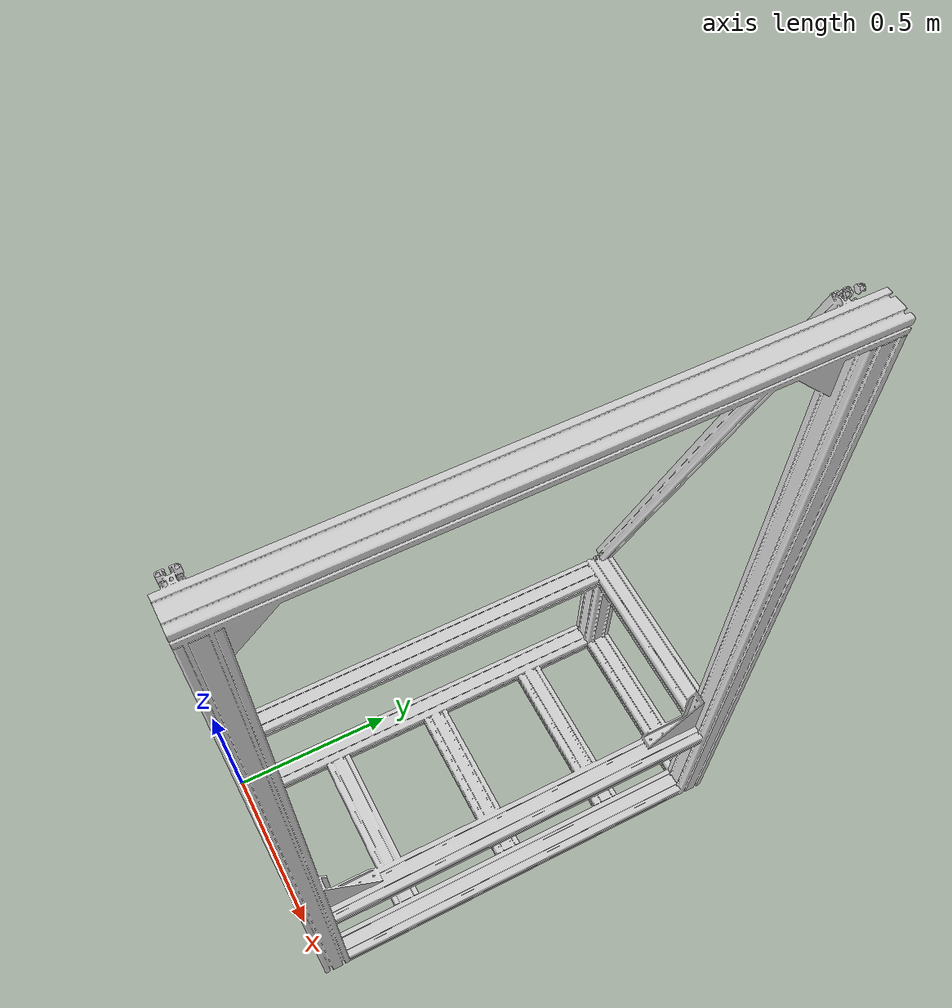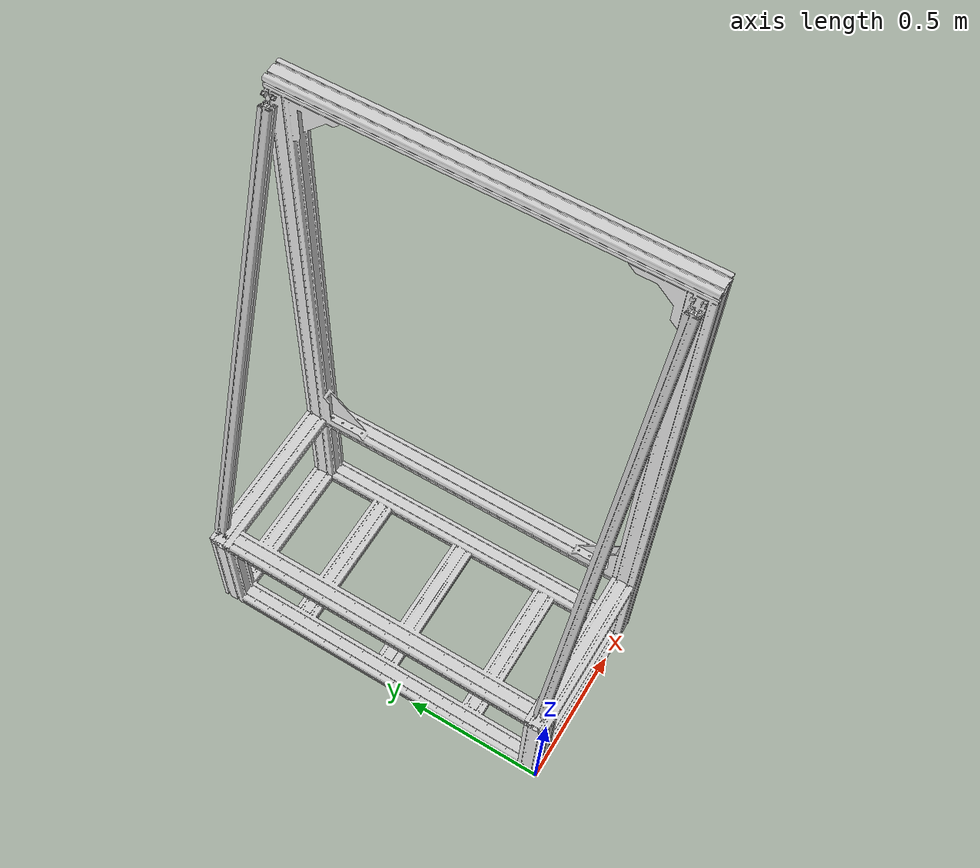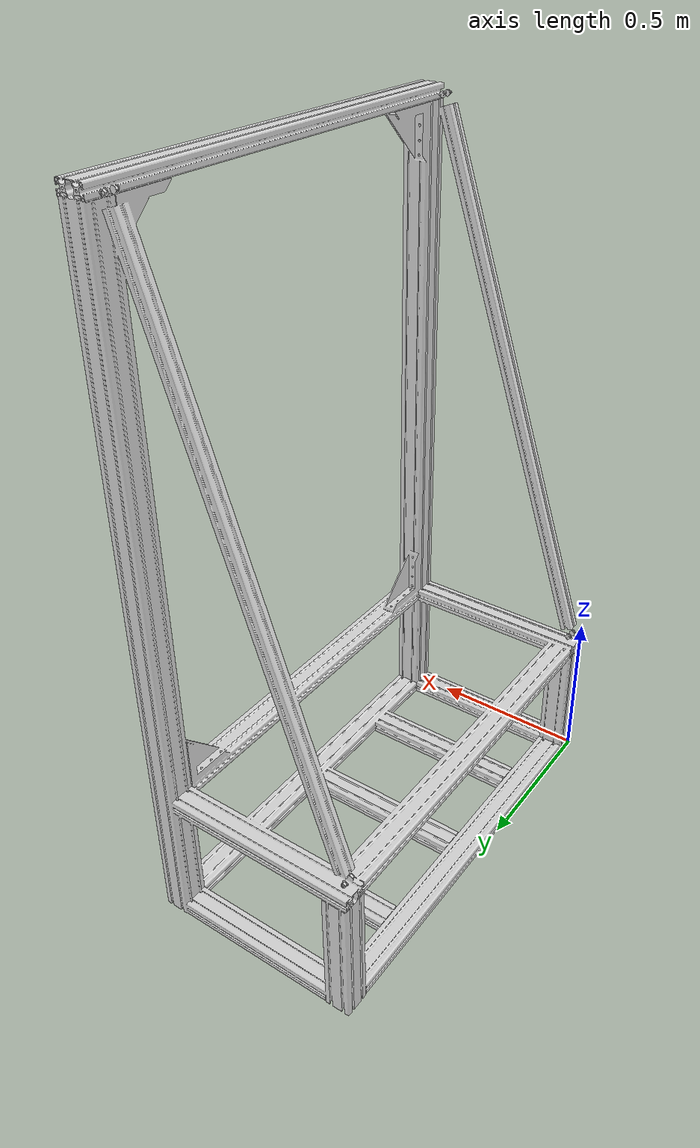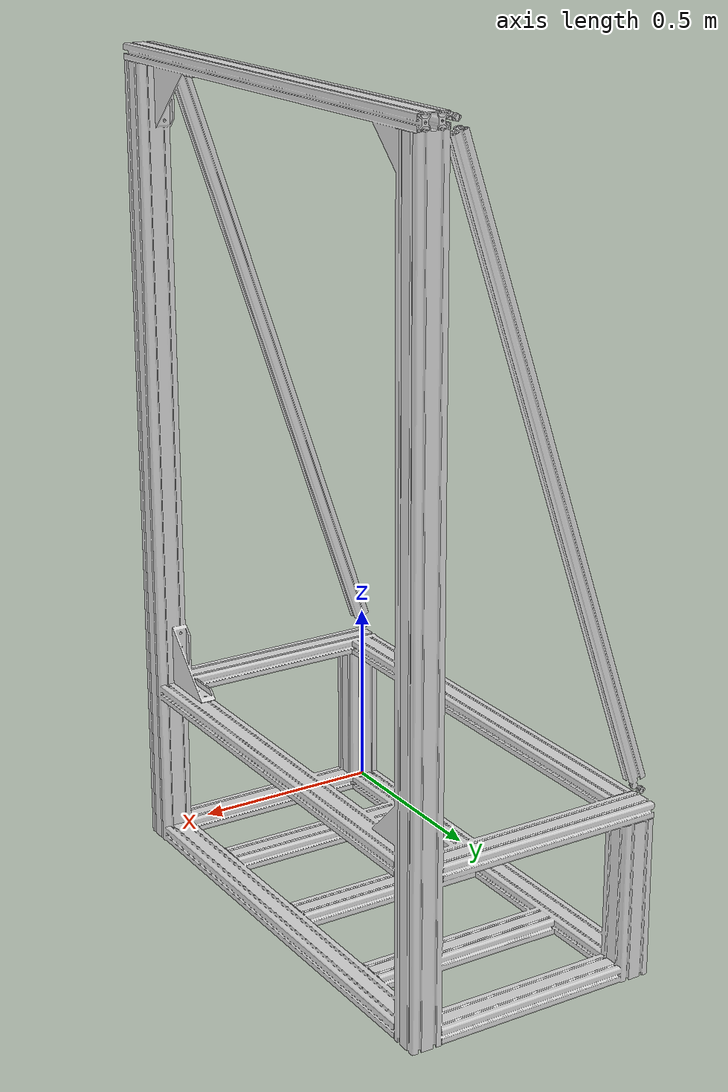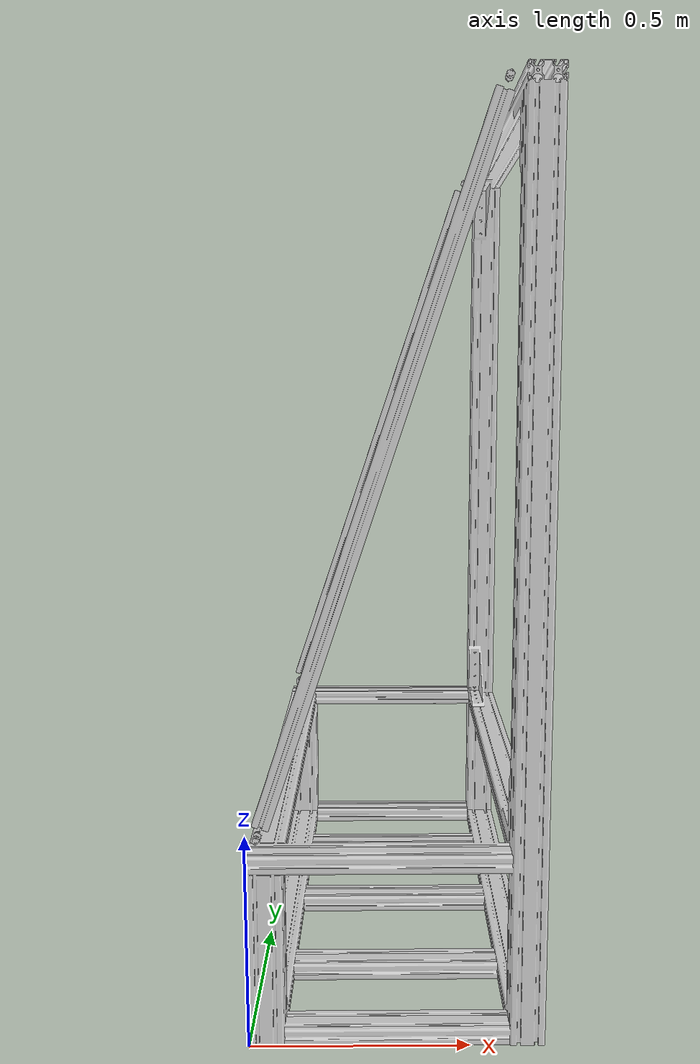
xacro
<?xml version="1.0"?>
<robot xmlns:xacro="http://wiki.ros.org/xacro" name="hatch_frame">
  <xacro:arg name="name" default=""/>
  <xacro:arg name="prefix" default=""/>

  <xacro:include filename="$(find hatch_frame)/urdf/colors.xacro"/>
  <xacro:include filename="$(find hatch_frame)/urdf/hatch_frame.xacro"/>

  <link name="world"/>

  <xacro:hatch_frame name="$(arg name)" prefix="$(arg prefix)" parent="world">
    <origin xyz="0 0 0" rpy="0 0 0"/>
  </xacro:hatch_frame>

</robot>

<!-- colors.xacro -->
<robot xmlns:xacro="http://wiki.ros.org/xacro" name="trainer_side">

  <material name="red">
    <color rgba="1 0 0 1"/>
  </material>

  <material name="green">
    <color rgba="0 1 0 1"/>
  </material>

  <material name="blue">
    <color rgba="0 0 1 1"/>
  </material>

  <material name="gray">
    <color rgba="0.85 0.85 0.85 1"/>
  </material>

</robot>

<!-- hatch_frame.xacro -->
<robot xmlns:xacro="http://wiki.ros.org/xacro">

  <xacro:macro name="hatch_frame" params="
    name:=''
    prefix:=''
    parent:=''
    *origin">

    <joint name="${prefix}hatch_frame_base_joint" type="fixed">
      <parent link="${parent}"/>
      <child link="${prefix}hatch_frame"/>
      <xacro:insert_block name="origin"/>
    </joint>

    <link name="${prefix}hatch_frame">
      <visual>
        <origin xyz="0.0 0.0 0.0" rpy="0 0 0"/>
        <geometry>
          <mesh filename="file://$(find hatch_frame)/meshes/visual/ivr_hatch_frame.stl"/>
        </geometry>
        <material name="gray"/>
      </visual>
    </link>

    <joint name="hatch_frame_joint" type="fixed">
      <parent link="hatch_frame"/>
      <child link="hatch_bottom"/>
      <origin xyz="0.0 0.0 0.0" rpy="0 0 0"/>
    </joint>

    <link name="hatch_bottom">
      <!--TODO set proper inertia-->
      <inertial>
        <origin rpy="0 0 0" xyz="0.0 0.0 0.0"/>
        <mass value="0.0"/>
        <inertia ixx="0.0" ixy="0.0" ixz="0.0" iyy="0.0" iyz="0.0" izz="0.0"/>
      </inertial>
      <collision>
        <origin xyz="${0.675/2} ${1.307/2} ${0.04/2}" rpy="0 0 0"/>
        <geometry>
          <box size="0.675 1.307 0.04"/>
        </geometry>
        <material name="red"/>
      </collision>
    </link>

    <joint name="hatch_bottom_back" type="fixed">
      <parent link="hatch_bottom"/>
      <child link="hatch_back"/>
      <origin xyz="0.0 0.0 0.0" rpy="0 0 0"/>
    </joint>

    <link name="hatch_back">
      <collision>
        <origin xyz="${0.1/2} ${1.307/2} ${0.610/2}" rpy="0 0 0"/>
        <geometry>
          <box size="0.1 1.307 0.610"/>
        </geometry>
        <material name="red"/>
      </collision>
    </link>

    <joint name="hatch_bottom_front" type="fixed">
      <parent link="hatch_bottom"/>
      <child link="hatch_front"/>
      <origin xyz="0.589 0.0 0.0" rpy="0 0 0"/>
    </joint>

    <link name="hatch_front">
      <collision>
        <origin xyz="${0.1/2} ${1.307/2} ${0.610/2}" rpy="0 0 0"/>
        <geometry>
          <box size="0.1 1.307 0.610"/>
        </geometry>
        <material name="red"/>
      </collision>
    </link>

    <joint name="hatch_bottom_left" type="fixed">
      <parent link="hatch_bottom"/>
      <child link="hatch_left"/>
      <origin xyz="0.0 -0.01 0.0" rpy="0 0 0"/>
    </joint>

    <link name="hatch_left">
      <collision>
        <origin xyz="${0.675/2} ${0.1/2} ${2.1082/2}" rpy="0 0 0"/>
        <geometry>
          <box size="0.675 0.1 2.1082"/>
        </geometry>
        <material name="red"/>
      </collision>
    </link>

    <joint name="hatch_bottom_right" type="fixed">
      <parent link="hatch_bottom"/>
      <child link="hatch_right"/>
      <origin xyz="0.0 1.22 0.0" rpy="0 0 0"/>
    </joint>

    <link name="hatch_right">
      <collision>
        <origin xyz="${0.675/2} ${0.1/2} ${2.108/2}" rpy="0 0 0"/>
        <geometry>
          <box size="0.675 0.1 2.1082"/>
        </geometry>
        <material name="red"/>
      </collision>
    </link>

    <joint name="hatch_bottom_top" type="fixed">
      <parent link="hatch_bottom"/>
      <child link="hatch_top"/>
      <origin xyz="0.589 0.0 1.913" rpy="0 0 0"/>
    </joint>

    <link name="hatch_top">
      <collision>
        <origin xyz="${0.1/2} ${1.307/2} ${0.197/2}" rpy="0 0 0"/>
        <geometry>
          <box size="0.1 1.307 0.197"/>
        </geometry>
        <material name="red"/>
      </collision>
    </link>

  </xacro:macro>
</robot>
